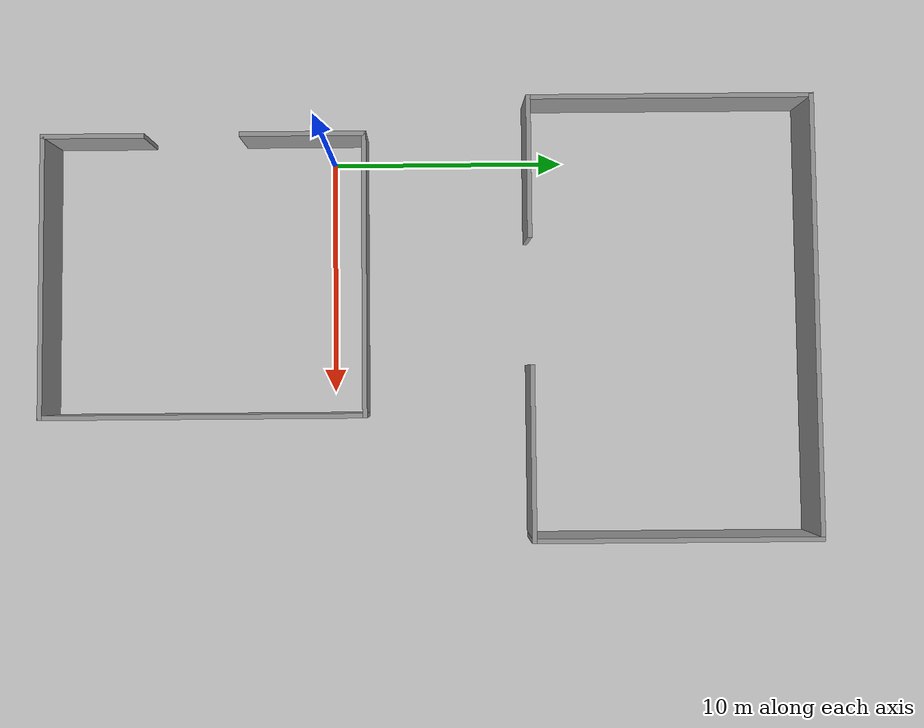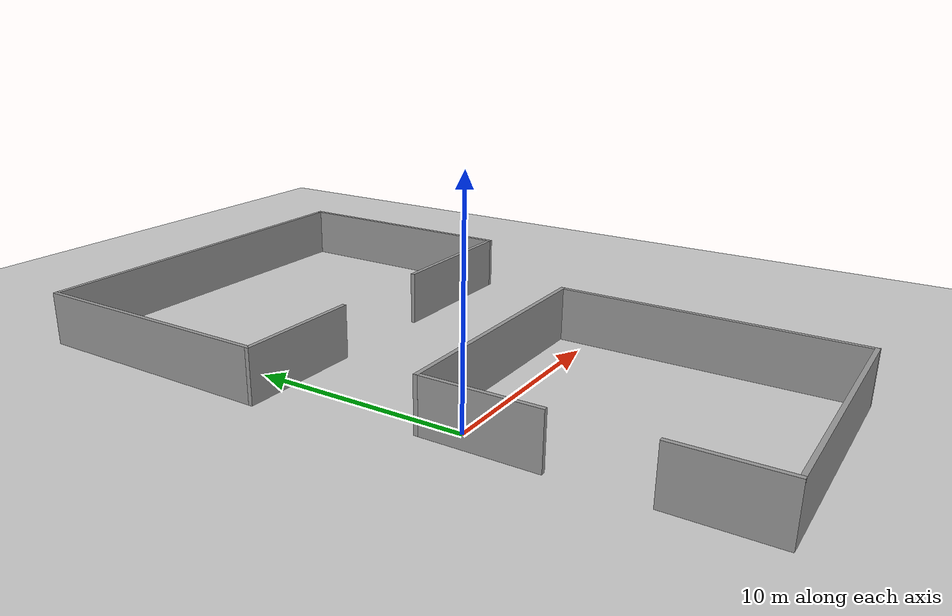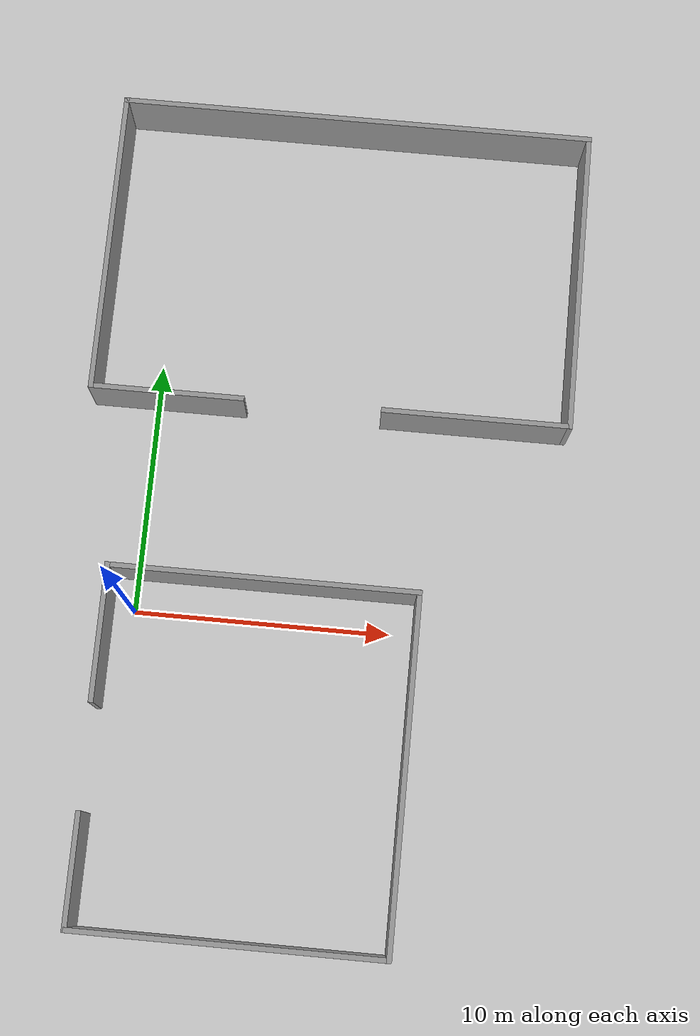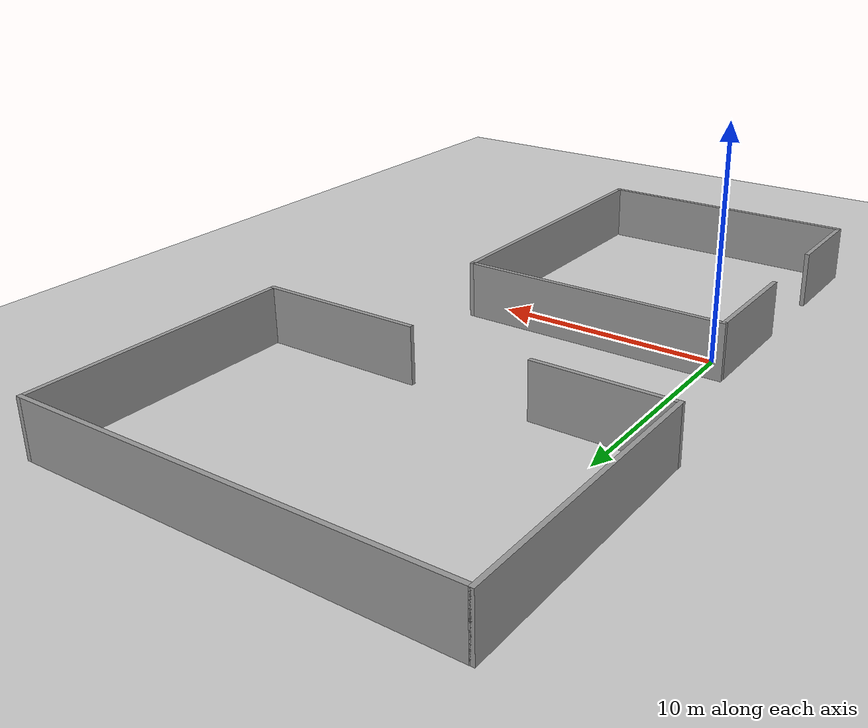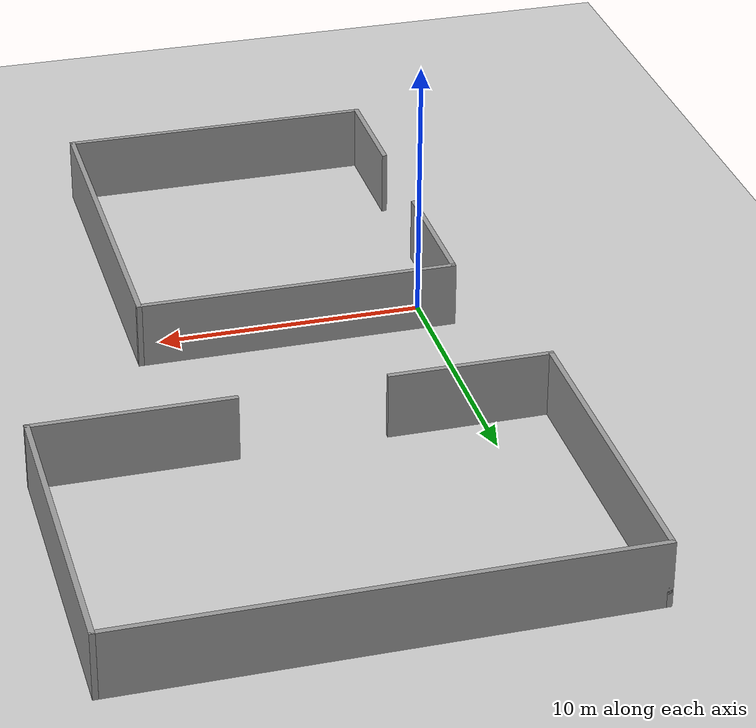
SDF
<sdf version="1.4">
 <world name="default">
  <light name="sun" type="directional">
   <pose>0 0 10 0 -0 0</pose>
   <diffuse>0.8 0.8 0.8 1</diffuse>
   <specular>0.2 0.2 0.2 1</specular>
   <attenuation>
    <range>1000</range>
    <constant>0.9</constant>
    <linear>0.01</linear>
    <quadratic>0.001</quadratic>
   </attenuation>
   <direction>-0.5 0.1 -0.9</direction>
  </light>
  <model name="ground_plane">
   <static>1</static>
   <link name="link">
    <collision name="collision">
     <geometry><plane><normal>0 0 1</normal><size>100 100</size></plane></geometry>
     <surface><friction><ode><mu>100</mu><mu2>50</mu2></ode></friction></surface>
    </collision>
    <visual name="visual">
     <cast_shadows>0</cast_shadows>
     <geometry><plane><normal>0 0 1</normal><size>100 100</size></plane></geometry>
     <material>
      <script><uri>file://media/materials/scripts/gazebo.material</uri><name>Gazebo/Grey</name></script>
     </material>
    </visual>
    <velocity_decay><linear>0</linear><angular>0</angular></velocity_decay>
   </link>
  </model>
  <physics type="ode">
   <max_step_size>0.01</max_step_size>
   <real_time_factor>1</real_time_factor>
   <real_time_update_rate>100</real_time_update_rate>
   <gravity>0 0 -9.8</gravity>
  </physics>
  <scene><ambient>0.4 0.4 0.4 1</ambient><background>0.7 0.7 0.7 1</background><shadows>1</shadows></scene>
  <model name="NormHouse00">
   <link name="Wall_19">
    <collision name="Wall_19_Collision">
     <geometry><box><size>4.40738 0.2 2.5</size></box></geometry>
     <pose>0 0 1.25 0 -0 0</pose>
    </collision>
    <visual name="Wall_19_Visual">
     <pose>0 0 1.25 0 -0 0</pose>
     <geometry><box><size>4.40738 0.2 2.5</size></box></geometry>
     <material>
      <script><uri>file://media/materials/scripts/gazebo.material</uri><name>Gazebo/Grey</name></script>
     </material>
    </visual>
    <velocity_decay><linear>0</linear><angular>0</angular></velocity_decay>
    <pose>-3.90893 -5.09804 0 0 0 -1.5708</pose>
   </link>
   <link name="Wall_20">
    <collision name="Wall_20_Collision">
     <geometry><box><size>12.0939 0.2 2.5</size></box></geometry>
     <pose>0 0 1.25 0 -0 0</pose>
    </collision>
    <visual name="Wall_20_Visual">
     <pose>0 0 1.25 0 -0 0</pose>
     <geometry><box><size>12.0939 0.2 2.5</size></box></geometry>
     <material>
      <script><uri>file://media/materials/scripts/gazebo.material</uri><name>Gazebo/Grey</name></script>
     </material>
    </visual>
    <velocity_decay><linear>0</linear><angular>0</angular></velocity_decay>
    <pose>2.03804 -7.20173 0 0 -0 0</pose>
   </link>
   <link name="Wall_21">
    <collision name="Wall_21_Collision">
     <geometry><box><size>13.7931 0.2 2.5</size></box></geometry>
     <pose>0 0 1.25 0 -0 0</pose>
    </collision>
    <visual name="Wall_21_Visual">
     <pose>0 0 1.25 0 -0 0</pose>
     <geometry><box><size>13.7931 0.2 2.5</size></box></geometry>
     <material>
      <script><uri>file://media/materials/scripts/gazebo.material</uri><name>Gazebo/Grey</name></script>
     </material>
    </visual>
    <velocity_decay><linear>0</linear><angular>0</angular></velocity_decay>
    <pose>7.98501 -0.405192 0 0 -0 1.5708</pose>
   </link>
   <link name="Wall_22">
    <collision name="Wall_22_Collision">
     <geometry><box><size>12.1344 0.2 2.5</size></box></geometry>
     <pose>0 0 1.25 0 -0 0</pose>
    </collision>
    <visual name="Wall_22_Visual">
     <pose>0 0 1.25 0 -0 0</pose>
     <geometry><box><size>12.1344 0.2 2.5</size></box></geometry>
     <material>
      <script><uri>file://media/materials/scripts/gazebo.material</uri><name>Gazebo/Grey</name></script>
     </material>
    </visual>
    <velocity_decay><linear>0</linear><angular>0</angular></velocity_decay>
    <pose>2.01781 6.39135 0 0 -0 3.14159</pose>
   </link>
   <link name="Wall_23">
    <collision name="Wall_23_Collision">
     <geometry><box><size>5.37831 0.2 2.5</size></box></geometry>
     <pose>0 0 1.25 0 -0 0</pose>
    </collision>
    <visual name="Wall_23_Visual">
     <pose>0 0 1.25 0 -0 0</pose>
     <geometry><box><size>5.37831 0.2 2.5</size></box></geometry>
     <material>
      <script><uri>file://media/materials/scripts/gazebo.material</uri><name>Gazebo/Grey</name></script>
     </material>
    </visual>
    <velocity_decay><linear>0</linear><angular>0</angular></velocity_decay>
    <pose>-3.94939 3.80219 0 0 0 -1.5708</pose>
   </link>
   <static>1</static>
   <pose>3 -4.99996 0 0 -0 0</pose>
  </model>
  <model name="NormHouse01">
   <link name="Wall_30">
    <collision name="Wall_30_Collision">
     <geometry><box><size>6.10651 0.2 2.5</size></box></geometry>
     <pose>0 0 1.25 0 -0 0</pose>
    </collision>
    <visual name="Wall_30_Visual">
     <pose>0 0 1.25 0 -0 0</pose>
     <geometry><box><size>6.10651 0.2 2.5</size></box></geometry>
     <material>
      <script><uri>file://media/materials/scripts/gazebo.material</uri><name>Gazebo/Grey</name></script>
     </material>
    </visual>
    <velocity_decay><linear>0</linear><angular>0</angular></velocity_decay>
    <pose>-6.25535 -7.3231 0 0 -0 3.14159</pose>
   </link>
   <link name="Wall_31">
    <collision name="Wall_31_Collision">
     <geometry><box><size>12.2153 0.2 2.5</size></box></geometry>
     <pose>0 0 1.25 0 -0 0</pose>
    </collision>
    <visual name="Wall_31_Visual">
     <pose>0 0 1.25 0 -0 0</pose>
     <geometry><box><size>12.2153 0.2 2.5</size></box></geometry>
     <material>
      <script><uri>file://media/materials/scripts/gazebo.material</uri><name>Gazebo/Grey</name></script>
     </material>
    </visual>
    <velocity_decay><linear>0</linear><angular>0</angular></velocity_decay>
    <pose>-9.20861 -1.31544 0 0 -0 1.5708</pose>
   </link>
   <link name="Wall_32">
    <collision name="Wall_32_Collision">
     <geometry><box><size>18.8905 0.2 2.5</size></box></geometry>
     <pose>0 0 1.25 0 -0 0</pose>
    </collision>
    <visual name="Wall_32_Visual">
     <pose>0 0 1.25 0 -0 0</pose>
     <geometry><box><size>18.8905 0.2 2.5</size></box></geometry>
     <material>
      <script><uri>file://media/materials/scripts/gazebo.material</uri><name>Gazebo/Grey</name></script>
     </material>
    </visual>
    <velocity_decay><linear>0</linear><angular>0</angular></velocity_decay>
    <pose>0.136626 4.69221 0 0 -0 0</pose>
   </link>
   <link name="Wall_33">
    <collision name="Wall_33_Collision">
     <geometry><box><size>12.1749 0.2 2.5</size></box></geometry>
     <pose>0 0 1.25 0 -0 0</pose>
    </collision>
    <visual name="Wall_33_Visual">
     <pose>0 0 1.25 0 -0 0</pose>
     <geometry><box><size>12.1749 0.2 2.5</size></box></geometry>
     <material>
      <script><uri>file://media/materials/scripts/gazebo.material</uri><name>Gazebo/Grey</name></script>
     </material>
    </visual>
    <velocity_decay><linear>0</linear><angular>0</angular></velocity_decay>
    <pose>9.48187 -1.29522 0 0 0 -1.5708</pose>
   </link>
   <link name="Wall_34">
    <collision name="Wall_34_Collision">
     <geometry><box><size>7.44155 0.2 2.5</size></box></geometry>
     <pose>0 0 1.25 0 -0 0</pose>
    </collision>
    <visual name="Wall_34_Visual">
     <pose>0 0 1.25 0 -0 0</pose>
     <geometry><box><size>7.44155 0.2 2.5</size></box></geometry>
     <material>
      <script><uri>file://media/materials/scripts/gazebo.material</uri><name>Gazebo/Grey</name></script>
     </material>
    </visual>
    <velocity_decay><linear>0</linear><angular>0</angular></velocity_decay>
    <pose>5.86109 -7.28264 0 0 -0 3.14159</pose>
   </link>
   <static>1</static>
   <pose>6.76351 15.6995 0 0 -0 0</pose>
  </model>
 </world>
</sdf>
